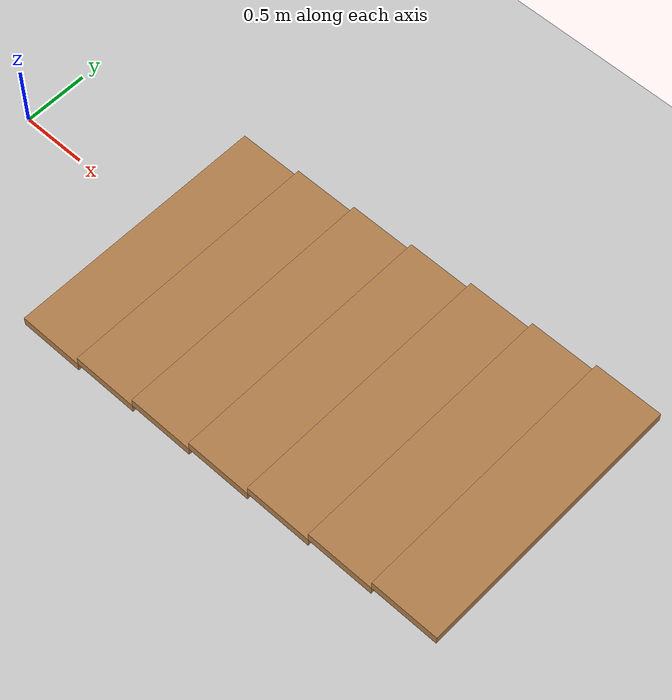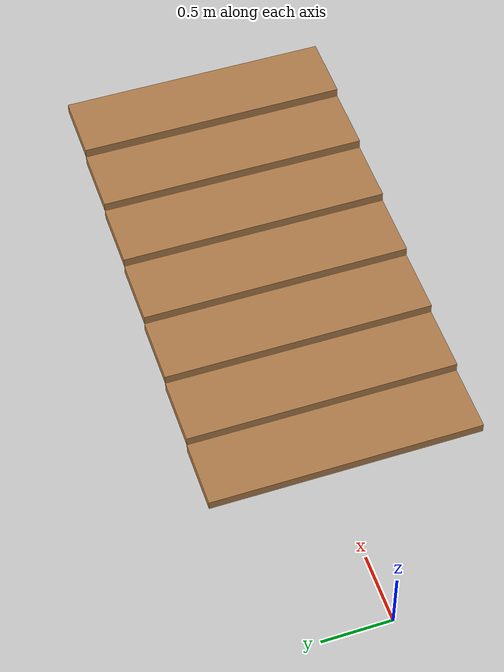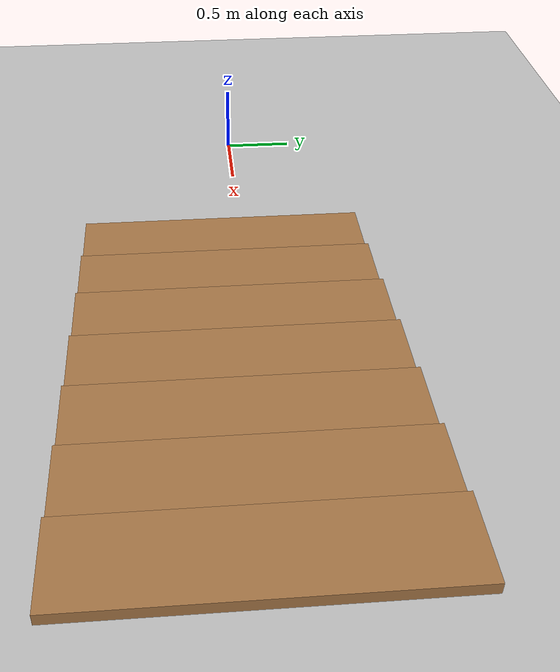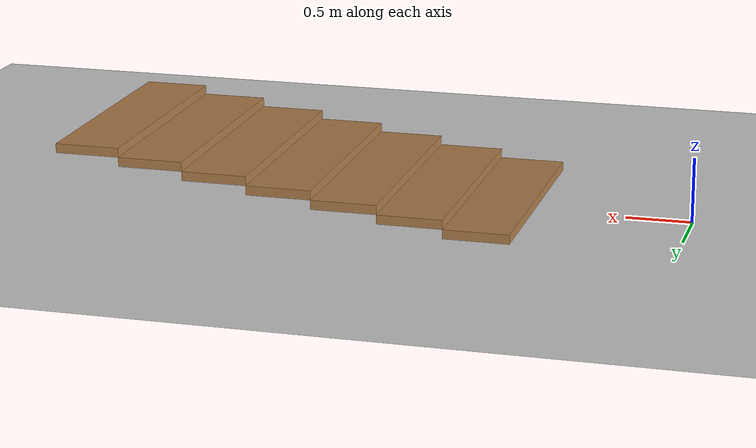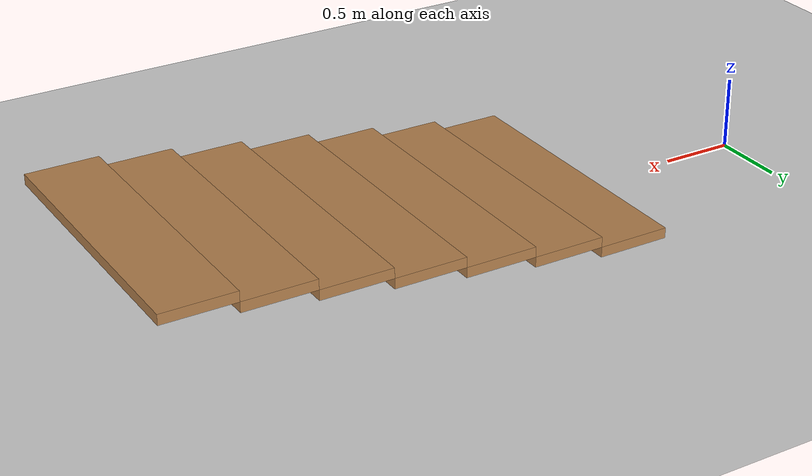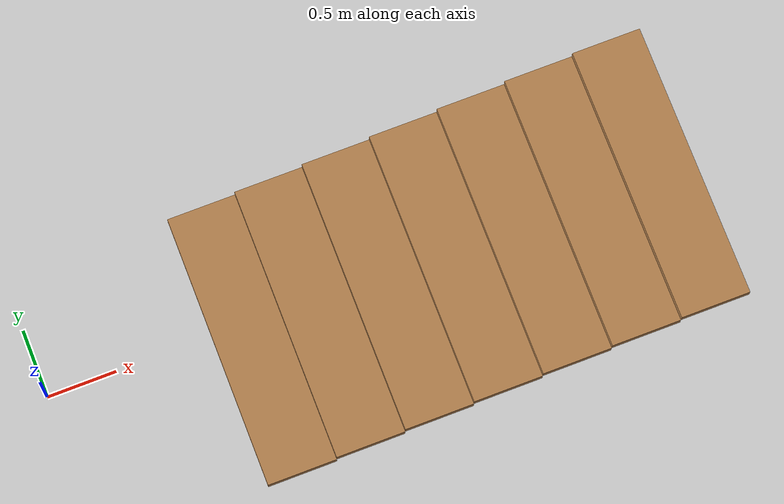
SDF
<sdf version="1.7">
 <world name="default">
  <light name="sun" type="directional">
   <pose>0 0 10 0 -0 0</pose>
   <diffuse>0.8 0.8 0.8 1</diffuse>
   <specular>0.2 0.2 0.2 1</specular>
   <attenuation>
    <range>1000</range>
    <constant>0.9</constant>
    <linear>0.01</linear>
    <quadratic>0.001</quadratic>
   </attenuation>
   <direction>-0.5 0.1 -0.9</direction>
   <spot><inner_angle>0</inner_angle><outer_angle>0</outer_angle><falloff>0</falloff></spot>
  </light>
  <model name="ground_plane">
   <static>1</static>
   <link name="link">
    <collision name="collision">
     <geometry><plane><normal>0 0 1</normal><size>100 100</size></plane></geometry>
     <surface>
      <contact><collide_bitmask>65535</collide_bitmask></contact>
      <friction><ode><mu>100</mu><mu2>50</mu2></ode></friction>
     </surface>
    </collision>
    <visual name="visual">
     <cast_shadows>0</cast_shadows>
     <geometry><plane><normal>0 0 1</normal><size>100 100</size></plane></geometry>
     <material>
      <script><uri>file://media/materials/scripts/gazebo.material</uri><name>Gazebo/Grey</name></script>
     </material>
    </visual>
   </link>
  </model>
  <gravity>0 0 -9.8</gravity>
  <magnetic_field>6e-06 2.3e-05 -4.2e-05</magnetic_field>
  <atmosphere type="adiabatic"/>
  <physics type="ode">
   <max_step_size>0.001</max_step_size>
   <real_time_factor>1</real_time_factor>
   <real_time_update_rate>1000</real_time_update_rate>
  </physics>
  <scene><ambient>0.4 0.4 0.4 1</ambient><background>0.7 0.7 0.7 1</background><shadows>1</shadows></scene>
  <spherical_coordinates>
   <surface_model>EARTH_WGS84</surface_model>
   <latitude_deg>0</latitude_deg>
   <longitude_deg>0</longitude_deg>
   <elevation>0</elevation>
   <heading_deg>0</heading_deg>
  </spherical_coordinates>
  <model name="stair_0.07h">
   <pose>2.94806 -0.130493 0 0 -0 1.57019</pose>
   <link name="Stairs_4">
    <visual name="Stairs_4_Visual_0">
     <pose>0 1.5 0.035714 0 -0 0</pose>
     <geometry><box><size>2 0.5 0.071429</size></box></geometry>
     <material>
      <script><uri>file://media/materials/scripts/gazebo.material</uri><name>Gazebo/Wood</name></script>
      <ambient>1 1 1 1</ambient>
     </material>
     <meta><layer>0</layer></meta>
    </visual>
    <collision name="Stairs_4_Collision_0">
     <geometry><box><size>2 0.5 0.071429</size></box></geometry>
     <pose>0 1.5 0.035714 0 -0 0</pose>
    </collision>
    <visual name="Stairs_4_Visual_1">
     <pose>0 1 0.107143 0 -0 0</pose>
     <geometry><box><size>2 0.5 0.071429</size></box></geometry>
     <material>
      <script><uri>file://media/materials/scripts/gazebo.material</uri><name>Gazebo/Wood</name></script>
      <ambient>1 1 1 1</ambient>
     </material>
     <meta><layer>0</layer></meta>
    </visual>
    <collision name="Stairs_4_Collision_1">
     <geometry><box><size>2 0.5 0.071429</size></box></geometry>
     <pose>0 1 0.107143 0 -0 0</pose>
    </collision>
    <visual name="Stairs_4_Visual_2">
     <pose>0 0.5 0.178571 0 -0 0</pose>
     <geometry><box><size>2 0.5 0.071429</size></box></geometry>
     <material>
      <script><uri>file://media/materials/scripts/gazebo.material</uri><name>Gazebo/Wood</name></script>
      <ambient>1 1 1 1</ambient>
     </material>
     <meta><layer>0</layer></meta>
    </visual>
    <collision name="Stairs_4_Collision_2">
     <geometry><box><size>2 0.5 0.071429</size></box></geometry>
     <pose>0 0.5 0.178571 0 -0 0</pose>
    </collision>
    <visual name="Stairs_4_Visual_3">
     <pose>0 0 0.25 0 -0 0</pose>
     <geometry><box><size>2 0.5 0.071429</size></box></geometry>
     <material>
      <script><uri>file://media/materials/scripts/gazebo.material</uri><name>Gazebo/Wood</name></script>
      <ambient>1 1 1 1</ambient>
     </material>
     <meta><layer>0</layer></meta>
    </visual>
    <collision name="Stairs_4_Collision_3">
     <geometry><box><size>2 0.5 0.071429</size></box></geometry>
     <pose>0 0 0.25 0 -0 0</pose>
    </collision>
    <visual name="Stairs_4_Visual_4">
     <pose>0 -0.5 0.321429 0 -0 0</pose>
     <geometry><box><size>2 0.5 0.071429</size></box></geometry>
     <material>
      <script><uri>file://media/materials/scripts/gazebo.material</uri><name>Gazebo/Wood</name></script>
      <ambient>1 1 1 1</ambient>
     </material>
     <meta><layer>0</layer></meta>
    </visual>
    <collision name="Stairs_4_Collision_4">
     <geometry><box><size>2 0.5 0.071429</size></box></geometry>
     <pose>0 -0.5 0.321429 0 -0 0</pose>
    </collision>
    <visual name="Stairs_4_Visual_5">
     <pose>0 -1 0.392857 0 -0 0</pose>
     <geometry><box><size>2 0.5 0.071429</size></box></geometry>
     <material>
      <script><uri>file://media/materials/scripts/gazebo.material</uri><name>Gazebo/Wood</name></script>
      <ambient>1 1 1 1</ambient>
     </material>
     <meta><layer>0</layer></meta>
    </visual>
    <collision name="Stairs_4_Collision_5">
     <geometry><box><size>2 0.5 0.071429</size></box></geometry>
     <pose>0 -1 0.392857 0 -0 0</pose>
    </collision>
    <visual name="Stairs_4_Visual_6">
     <pose>0 -1.5 0.464286 0 -0 0</pose>
     <geometry><box><size>2 0.5 0.071429</size></box></geometry>
     <material>
      <script><uri>file://media/materials/scripts/gazebo.material</uri><name>Gazebo/Wood</name></script>
      <ambient>1 1 1 1</ambient>
     </material>
     <meta><layer>0</layer></meta>
    </visual>
    <collision name="Stairs_4_Collision_6">
     <geometry><box><size>2 0.5 0.071429</size></box></geometry>
     <pose>0 -1.5 0.464286 0 -0 0</pose>
    </collision>
   </link>
   <static>1</static>
  </model>
 </world>
</sdf>
